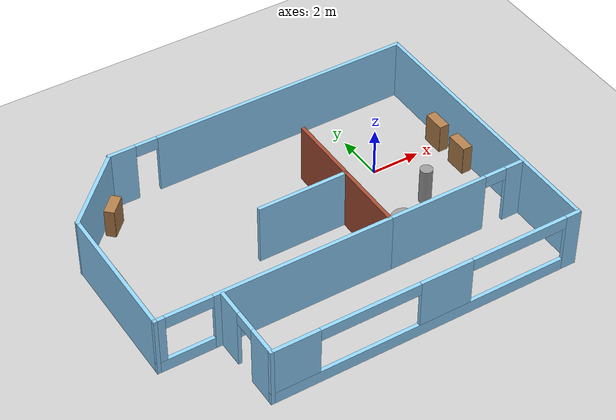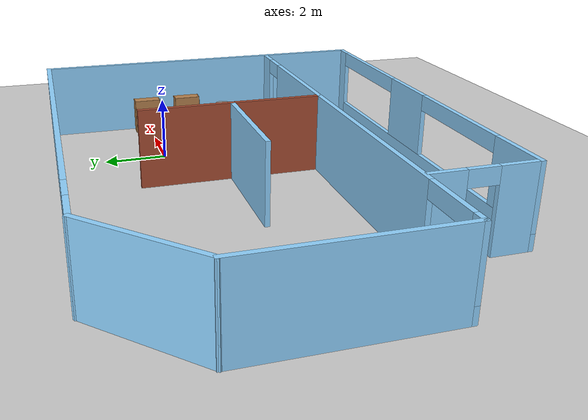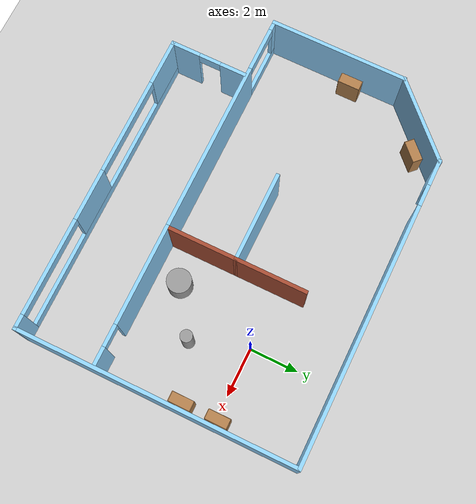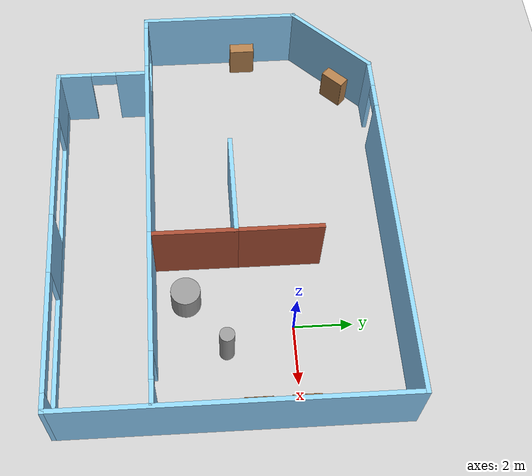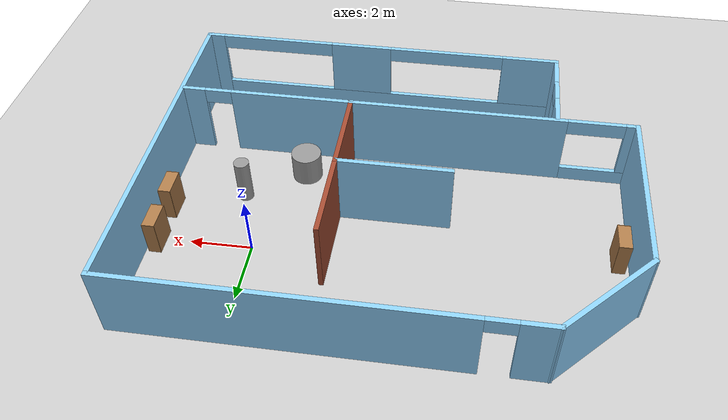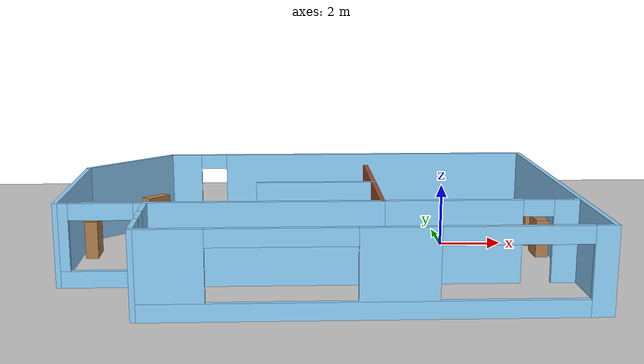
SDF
<sdf version="1.6">
 <world name="default">
  <plugin name="welcome" filename="libwelcome.so"/>
  <light name="sun" type="directional">
   <pose>0 0 10 0 -0 0</pose>
   <diffuse>0.8 0.8 0.8 1</diffuse>
   <specular>0.2 0.2 0.2 1</specular>
   <attenuation>
    <range>1000</range>
    <constant>0.9</constant>
    <linear>0.01</linear>
    <quadratic>0.001</quadratic>
   </attenuation>
   <direction>-0.5 0.1 -0.9</direction>
  </light>
  <model name="ground_plane">
   <static>1</static>
   <link name="link">
    <collision name="collision">
     <geometry><plane><normal>0 0 1</normal><size>100 100</size></plane></geometry>
     <surface>
      <contact><collide_bitmask>65535</collide_bitmask></contact>
      <friction><ode><mu>100</mu><mu2>50</mu2></ode></friction>
     </surface>
    </collision>
    <visual name="visual">
     <cast_shadows>0</cast_shadows>
     <geometry><plane><normal>0 0 1</normal><size>100 100</size></plane></geometry>
     <material>
      <script><uri>file://media/materials/scripts/gazebo.material</uri><name>Gazebo/Grey</name></script>
     </material>
    </visual>
   </link>
  </model>
  <gravity>0 0 -9.8</gravity>
  <magnetic_field>6e-06 2.3e-05 -4.2e-05</magnetic_field>
  <atmosphere type="adiabatic"/>
  <physics name="default_physics" default="0" type="ode">
   <max_step_size>0.001</max_step_size>
   <real_time_factor>1</real_time_factor>
   <real_time_update_rate>1000</real_time_update_rate>
  </physics>
  <scene><ambient>0.4 0.4 0.4 1</ambient><background>0.7 0.7 0.7 1</background><shadows>1</shadows></scene>
  <spherical_coordinates>
   <surface_model>EARTH_WGS84</surface_model>
   <latitude_deg>0</latitude_deg>
   <longitude_deg>0</longitude_deg>
   <elevation>0</elevation>
   <heading_deg>0</heading_deg>
  </spherical_coordinates>
  <model name="building2">
   <pose>-4.24274 -2.14388 0 0 -0 0</pose>
   <link name="Wall_0">
    <collision name="Wall_0_Collision">
     <geometry><box><size>3 0.15 2.5</size></box></geometry>
     <pose>0 0 1.25 0 -0 0</pose>
    </collision>
    <visual name="Wall_0_Visual">
     <pose>0 0 1.25 0 -0 0</pose>
     <geometry><box><size>3 0.15 2.5</size></box></geometry>
     <material>
      <script><uri>file://media/materials/scripts/gazebo.material</uri><name>Gazebo/Bricks</name></script>
      <ambient>0.564706 0.827451 1 1</ambient>
     </material>
     <meta><layer>0</layer></meta>
    </visual>
    <pose>1.79274 -1.06112 0 0 0 -1.5708</pose>
   </link>
   <link name="Wall_10">
    <pose>4.64274 -2.48612 0 0 -0 0</pose>
    <visual name="Wall_10_Visual_0">
     <pose>-0.845309 0 1.25 0 -0 0</pose>
     <geometry><box><size>4.15938 0.15 2.5</size></box></geometry>
     <material>
      <script><uri>file://media/materials/scripts/gazebo.material</uri><name>Gazebo/Grey</name></script>
      <ambient>0.564706 0.827451 1 1</ambient>
     </material>
     <meta><layer>0</layer></meta>
    </visual>
    <collision name="Wall_10_Collision_0">
     <geometry><box><size>4.15938 0.15 2.5</size></box></geometry>
     <pose>-0.845309 0 1.25 0 -0 0</pose>
    </collision>
    <visual name="Wall_10_Visual_1">
     <pose>2.52969 0 1.25 0 -0 0</pose>
     <geometry><box><size>0.790618 0.15 2.5</size></box></geometry>
     <material>
      <script><uri>file://media/materials/scripts/gazebo.material</uri><name>Gazebo/Grey</name></script>
      <ambient>0.564706 0.827451 1 1</ambient>
     </material>
     <meta><layer>0</layer></meta>
    </visual>
    <collision name="Wall_10_Collision_1">
     <geometry><box><size>0.790618 0.15 2.5</size></box></geometry>
     <pose>2.52969 0 1.25 0 -0 0</pose>
    </collision>
    <visual name="Wall_10_Visual_2">
     <pose>1.68438 0 2.25 0 -0 0</pose>
     <geometry><box><size>0.9 0.15 0.5</size></box></geometry>
     <material>
      <script><uri>file://media/materials/scripts/gazebo.material</uri><name>Gazebo/Grey</name></script>
      <ambient>0.564706 0.827451 1 1</ambient>
     </material>
     <meta><layer>0</layer></meta>
    </visual>
    <collision name="Wall_10_Collision_2">
     <geometry><box><size>0.9 0.15 0.5</size></box></geometry>
     <pose>1.68438 0 2.25 0 -0 0</pose>
    </collision>
   </link>
   <link name="Wall_12">
    <collision name="Wall_12_Collision">
     <geometry><box><size>3.75 0.15 2.5</size></box></geometry>
     <pose>0 0 1.25 0 -0 0</pose>
    </collision>
    <visual name="Wall_12_Visual">
     <pose>0 0 1.25 0 -0 0</pose>
     <geometry><box><size>3.75 0.15 2.5</size></box></geometry>
     <material>
      <script><uri>file://media/materials/scripts/gazebo.material</uri><name>Gazebo/Grey</name></script>
      <ambient>0.564706 0.827451 1 1</ambient>
     </material>
     <meta><layer>0</layer></meta>
    </visual>
    <pose>-0.00726 0.363883 0 0 -0 3.14159</pose>
   </link>
   <link name="Wall_14">
    <collision name="Wall_14_Collision">
     <geometry><box><size>3 0.15 2.5</size></box></geometry>
     <pose>0 0 1.25 0 -0 0</pose>
    </collision>
    <visual name="Wall_14_Visual">
     <pose>0 0 1.25 0 -0 0</pose>
     <geometry><box><size>3 0.15 2.5</size></box></geometry>
     <material>
      <script><uri>file://media/materials/scripts/gazebo.material</uri><name>Gazebo/Bricks</name></script>
      <ambient>0.564706 0.827451 1 1</ambient>
     </material>
     <meta><layer>0</layer></meta>
    </visual>
    <pose>1.79274 1.78888 0 0 -0 1.5708</pose>
   </link>
   <link name="Wall_2">
    <pose>-2.88226 -2.48612 0 0 -0 3.14159</pose>
    <visual name="Wall_2_Visual_0">
     <pose>-1.14413 0 1.25 0 -0 0</pose>
     <geometry><box><size>7.21174 0.15 2.5</size></box></geometry>
     <material>
      <script><uri>file://media/materials/scripts/gazebo.material</uri><name>Gazebo/Grey</name></script>
      <ambient>0.564706 0.827451 1 1</ambient>
     </material>
     <meta><layer>0</layer></meta>
    </visual>
    <collision name="Wall_2_Collision_0">
     <geometry><box><size>7.21174 0.15 2.5</size></box></geometry>
     <pose>-1.14413 0 1.25 0 -0 0</pose>
    </collision>
    <visual name="Wall_2_Visual_1">
     <pose>3.60587 0 0.25 0 -0 0</pose>
     <geometry><box><size>2.28826 0.15 0.5</size></box></geometry>
     <material>
      <script><uri>file://media/materials/scripts/gazebo.material</uri><name>Gazebo/Grey</name></script>
      <ambient>0.564706 0.827451 1 1</ambient>
     </material>
     <meta><layer>0</layer></meta>
    </visual>
    <collision name="Wall_2_Collision_1">
     <geometry><box><size>2.28826 0.15 0.5</size></box></geometry>
     <pose>3.60587 0 0.25 0 -0 0</pose>
    </collision>
    <visual name="Wall_2_Visual_2">
     <pose>4.53037 0 1.5 0 -0 0</pose>
     <geometry><box><size>0.439256 0.15 2</size></box></geometry>
     <material>
      <script><uri>file://media/materials/scripts/gazebo.material</uri><name>Gazebo/Grey</name></script>
      <ambient>0.564706 0.827451 1 1</ambient>
     </material>
     <meta><layer>0</layer></meta>
    </visual>
    <collision name="Wall_2_Collision_2">
     <geometry><box><size>0.439256 0.15 2</size></box></geometry>
     <pose>4.53037 0 1.5 0 -0 0</pose>
    </collision>
    <visual name="Wall_2_Visual_3">
     <pose>3.38624 0 2.25 0 -0 0</pose>
     <geometry><box><size>1.849 0.15 0.5</size></box></geometry>
     <material>
      <script><uri>file://media/materials/scripts/gazebo.material</uri><name>Gazebo/Grey</name></script>
      <ambient>0.564706 0.827451 1 1</ambient>
     </material>
     <meta><layer>0</layer></meta>
    </visual>
    <collision name="Wall_2_Collision_3">
     <geometry><box><size>1.849 0.15 0.5</size></box></geometry>
     <pose>3.38624 0 2.25 0 -0 0</pose>
    </collision>
   </link>
   <link name="Wall_3">
    <collision name="Wall_3_Collision">
     <geometry><box><size>5.75 0.15 2.5</size></box></geometry>
     <pose>0 0 1.25 0 -0 0</pose>
    </collision>
    <visual name="Wall_3_Visual">
     <pose>0 0 1.25 0 -0 0</pose>
     <geometry><box><size>5.75 0.15 2.5</size></box></geometry>
     <material>
      <script><uri>file://media/materials/scripts/gazebo.material</uri><name>Gazebo/Grey</name></script>
      <ambient>0.564706 0.827451 1 1</ambient>
     </material>
     <meta><layer>0</layer></meta>
    </visual>
    <pose>-7.55726 0.313883 0 0 -0 1.5708</pose>
   </link>
   <link name="Wall_4">
    <collision name="Wall_4_Collision">
     <geometry><box><size>3.75 0.15 2.5</size></box></geometry>
     <pose>0 0 1.25 0 -0 0</pose>
    </collision>
    <visual name="Wall_4_Visual">
     <pose>0 0 1.25 0 -0 0</pose>
     <geometry><box><size>3.75 0.15 2.5</size></box></geometry>
     <material>
      <script><uri>file://media/materials/scripts/gazebo.material</uri><name>Gazebo/Grey</name></script>
      <ambient>0.564706 0.827451 1 1</ambient>
     </material>
     <meta><layer>0</layer></meta>
    </visual>
    <pose>-6.28447 4.38668 0 0 -0 0.785398</pose>
   </link>
   <link name="Wall_5">
    <pose>1.28832 5.65947 0 0 -0 0</pose>
    <visual name="Wall_5_Visual_0">
     <pose>-5.80886 0 1.25 0 -0 0</pose>
     <geometry><box><size>1.13228 0.15 2.5</size></box></geometry>
     <material>
      <script><uri>file://media/materials/scripts/gazebo.material</uri><name>Gazebo/Grey</name></script>
      <ambient>0.564706 0.827451 1 1</ambient>
     </material>
     <meta><layer>0</layer></meta>
    </visual>
    <collision name="Wall_5_Collision_0">
     <geometry><box><size>1.13228 0.15 2.5</size></box></geometry>
     <pose>-5.80886 0 1.25 0 -0 0</pose>
    </collision>
    <visual name="Wall_5_Visual_1">
     <pose>1.01614 0 1.25 0 -0 0</pose>
     <geometry><box><size>10.7177 0.15 2.5</size></box></geometry>
     <material>
      <script><uri>file://media/materials/scripts/gazebo.material</uri><name>Gazebo/Grey</name></script>
      <ambient>0.564706 0.827451 1 1</ambient>
     </material>
     <meta><layer>0</layer></meta>
    </visual>
    <collision name="Wall_5_Collision_1">
     <geometry><box><size>10.7177 0.15 2.5</size></box></geometry>
     <pose>1.01614 0 1.25 0 -0 0</pose>
    </collision>
    <visual name="Wall_5_Visual_2">
     <pose>-4.79272 0 2.25 0 -0 0</pose>
     <geometry><box><size>0.9 0.15 0.5</size></box></geometry>
     <material>
      <script><uri>file://media/materials/scripts/gazebo.material</uri><name>Gazebo/Grey</name></script>
      <ambient>0.564706 0.827451 1 1</ambient>
     </material>
     <meta><layer>0</layer></meta>
    </visual>
    <collision name="Wall_5_Collision_2">
     <geometry><box><size>0.9 0.15 0.5</size></box></geometry>
     <pose>-4.79272 0 2.25 0 -0 0</pose>
    </collision>
   </link>
   <link name="Wall_6">
    <collision name="Wall_6_Collision">
     <geometry><box><size>11.5 0.15 2.5</size></box></geometry>
     <pose>0 0 1.25 0 -0 0</pose>
    </collision>
    <visual name="Wall_6_Visual">
     <pose>0 0 1.25 0 -0 0</pose>
     <geometry><box><size>11.5 0.15 2.5</size></box></geometry>
     <material>
      <script><uri>file://media/materials/scripts/gazebo.material</uri><name>Gazebo/Grey</name></script>
      <ambient>0.564706 0.827451 1 1</ambient>
     </material>
     <meta><layer>0</layer></meta>
    </visual>
    <pose>7.58832 -0.015533 0 0 0 -1.5708</pose>
   </link>
   <link name="Wall_7">
    <pose>1.28832 -5.69053 0 0 -0 3.14159</pose>
    <visual name="Wall_7_Visual_0">
     <pose>-6.05469 0 1.25 0 -0 0</pose>
     <geometry><box><size>0.640616 0.15 2.5</size></box></geometry>
     <material>
      <script><uri>file://media/materials/scripts/gazebo.material</uri><name>Gazebo/Grey</name></script>
      <ambient>0.564706 0.827451 1 1</ambient>
     </material>
     <meta><layer>0</layer></meta>
    </visual>
    <collision name="Wall_7_Collision_0">
     <geometry><box><size>0.640616 0.15 2.5</size></box></geometry>
     <pose>-6.05469 0 1.25 0 -0 0</pose>
    </collision>
    <visual name="Wall_7_Visual_1">
     <pose>0.320308 0 0.25 0 -0 0</pose>
     <geometry><box><size>12.1094 0.15 0.5</size></box></geometry>
     <material>
      <script><uri>file://media/materials/scripts/gazebo.material</uri><name>Gazebo/Grey</name></script>
      <ambient>0.564706 0.827451 1 1</ambient>
     </material>
     <meta><layer>0</layer></meta>
    </visual>
    <collision name="Wall_7_Collision_1">
     <geometry><box><size>12.1094 0.15 0.5</size></box></geometry>
     <pose>0.320308 0 0.25 0 -0 0</pose>
    </collision>
    <visual name="Wall_7_Visual_2">
     <pose>-0.658941 0 1.5 0 -0 0</pose>
     <geometry><box><size>2.15089 0.15 2</size></box></geometry>
     <material>
      <script><uri>file://media/materials/scripts/gazebo.material</uri><name>Gazebo/Grey</name></script>
      <ambient>0.564706 0.827451 1 1</ambient>
     </material>
     <meta><layer>0</layer></meta>
    </visual>
    <collision name="Wall_7_Collision_2">
     <geometry><box><size>2.15089 0.15 2</size></box></geometry>
     <pose>-0.658941 0 1.5 0 -0 0</pose>
    </collision>
    <visual name="Wall_7_Visual_3">
     <pose>5.39575 0 1.5 0 -0 0</pose>
     <geometry><box><size>1.9585 0.15 2</size></box></geometry>
     <material>
      <script><uri>file://media/materials/scripts/gazebo.material</uri><name>Gazebo/Grey</name></script>
      <ambient>0.564706 0.827451 1 1</ambient>
     </material>
     <meta><layer>0</layer></meta>
    </visual>
    <collision name="Wall_7_Collision_3">
     <geometry><box><size>1.9585 0.15 2</size></box></geometry>
     <pose>5.39575 0 1.5 0 -0 0</pose>
    </collision>
    <visual name="Wall_7_Visual_4">
     <pose>-3.73438 0 2.25 0 -0 0</pose>
     <geometry><box><size>4 0.15 0.5</size></box></geometry>
     <material>
      <script><uri>file://media/materials/scripts/gazebo.material</uri><name>Gazebo/Grey</name></script>
      <ambient>0.564706 0.827451 1 1</ambient>
     </material>
     <meta><layer>0</layer></meta>
    </visual>
    <collision name="Wall_7_Collision_4">
     <geometry><box><size>4 0.15 0.5</size></box></geometry>
     <pose>-3.73438 0 2.25 0 -0 0</pose>
    </collision>
    <visual name="Wall_7_Visual_5">
     <pose>2.4165 0 2.25 0 -0 0</pose>
     <geometry><box><size>4 0.15 0.5</size></box></geometry>
     <material>
      <script><uri>file://media/materials/scripts/gazebo.material</uri><name>Gazebo/Grey</name></script>
      <ambient>0.564706 0.827451 1 1</ambient>
     </material>
     <meta><layer>0</layer></meta>
    </visual>
    <collision name="Wall_7_Collision_5">
     <geometry><box><size>4 0.15 0.5</size></box></geometry>
     <pose>2.4165 0 2.25 0 -0 0</pose>
    </collision>
   </link>
   <link name="Wall_8">
    <pose>-5.01168 -4.14053 0 0 -0 1.5708</pose>
    <visual name="Wall_8_Visual_0">
     <pose>-0.999648 0 1.25 0 -0 0</pose>
     <geometry><box><size>1.2507 0.15 2.5</size></box></geometry>
     <material>
      <script><uri>file://media/materials/scripts/gazebo.material</uri><name>Gazebo/Grey</name></script>
      <ambient>0.564706 0.827451 1 1</ambient>
     </material>
     <meta><layer>0</layer></meta>
    </visual>
    <collision name="Wall_8_Collision_0">
     <geometry><box><size>1.2507 0.15 2.5</size></box></geometry>
     <pose>-0.999648 0 1.25 0 -0 0</pose>
    </collision>
    <visual name="Wall_8_Visual_1">
     <pose>1.07535 0 1.25 0 -0 0</pose>
     <geometry><box><size>1.0993 0.15 2.5</size></box></geometry>
     <material>
      <script><uri>file://media/materials/scripts/gazebo.material</uri><name>Gazebo/Grey</name></script>
      <ambient>0.564706 0.827451 1 1</ambient>
     </material>
     <meta><layer>0</layer></meta>
    </visual>
    <collision name="Wall_8_Collision_1">
     <geometry><box><size>1.0993 0.15 2.5</size></box></geometry>
     <pose>1.07535 0 1.25 0 -0 0</pose>
    </collision>
    <visual name="Wall_8_Visual_2">
     <pose>0.075703 0 2.25 0 -0 0</pose>
     <geometry><box><size>0.9 0.15 0.5</size></box></geometry>
     <material>
      <script><uri>file://media/materials/scripts/gazebo.material</uri><name>Gazebo/Grey</name></script>
      <ambient>0.564706 0.827451 1 1</ambient>
     </material>
     <meta><layer>0</layer></meta>
    </visual>
    <collision name="Wall_8_Collision_2">
     <geometry><box><size>0.9 0.15 0.5</size></box></geometry>
     <pose>0.075703 0 2.25 0 -0 0</pose>
    </collision>
   </link>
   <static>1</static>
  </model>
  <model name="bookshelf">
   <static>1</static>
   <link name="link">
    <inertial><mass>1</mass></inertial>
    <collision name="back">
     <pose>0 0.005 0.6 0 -0 0</pose>
     <geometry><box><size>0.9 0.01 1.2</size></box></geometry>
    </collision>
    <visual name="visual1">
     <pose>0 0.005 0.6 0 -0 0</pose>
     <geometry><box><size>0.9 0.01 1.2</size></box></geometry>
     <material>
      <script><uri>file://media/materials/scripts/gazebo.material</uri><name>Gazebo/Wood</name></script>
     </material>
    </visual>
    <collision name="left_side">
     <pose>0.45 -0.195 0.6 0 -0 0</pose>
     <geometry><box><size>0.02 0.4 1.2</size></box></geometry>
    </collision>
    <visual name="visual2">
     <pose>0.45 -0.195 0.6 0 -0 0</pose>
     <geometry><box><size>0.02 0.4 1.2</size></box></geometry>
     <material>
      <script><uri>file://media/materials/scripts/gazebo.material</uri><name>Gazebo/Wood</name></script>
     </material>
    </visual>
    <collision name="right_side">
     <pose>-0.45 -0.195 0.6 0 -0 0</pose>
     <geometry><box><size>0.02 0.4 1.2</size></box></geometry>
    </collision>
    <visual name="visual3">
     <pose>-0.45 -0.195 0.6 0 -0 0</pose>
     <geometry><box><size>0.02 0.4 1.2</size></box></geometry>
     <material>
      <script><uri>file://media/materials/scripts/gazebo.material</uri><name>Gazebo/Wood</name></script>
     </material>
    </visual>
    <collision name="bottom">
     <pose>0 -0.195 0.03 0 -0 0</pose>
     <geometry><box><size>0.88 0.4 0.06</size></box></geometry>
    </collision>
    <visual name="visual4">
     <pose>0 -0.195 0.03 0 -0 0</pose>
     <geometry><box><size>0.88 0.4 0.06</size></box></geometry>
     <material>
      <script><uri>file://media/materials/scripts/gazebo.material</uri><name>Gazebo/Wood</name></script>
     </material>
    </visual>
    <collision name="top">
     <pose>0 -0.195 1.19 0 -0 0</pose>
     <geometry><box><size>0.88 0.4 0.02</size></box></geometry>
    </collision>
    <visual name="visual5">
     <pose>0 -0.195 1.19 0 -0 0</pose>
     <geometry><box><size>0.88 0.4 0.02</size></box></geometry>
     <material>
      <script><uri>file://media/materials/scripts/gazebo.material</uri><name>Gazebo/Wood</name></script>
     </material>
    </visual>
    <collision name="low_shelf">
     <pose>0 -0.195 0.43 0 -0 0</pose>
     <geometry><box><size>0.88 0.4 0.02</size></box></geometry>
    </collision>
    <visual name="visual6">
     <pose>0 -0.195 0.43 0 -0 0</pose>
     <geometry><box><size>0.88 0.4 0.02</size></box></geometry>
     <material>
      <script><uri>file://media/materials/scripts/gazebo.material</uri><name>Gazebo/Wood</name></script>
     </material>
    </visual>
    <collision name="high_shelf">
     <pose>0 -0.195 0.8 0 -0 0</pose>
     <geometry><box><size>0.88 0.4 0.02</size></box></geometry>
    </collision>
    <visual name="visual7">
     <pose>0 -0.195 0.8 0 -0 0</pose>
     <geometry><box><size>0.88 0.4 0.02</size></box></geometry>
     <material>
      <script><uri>file://media/materials/scripts/gazebo.material</uri><name>Gazebo/Wood</name></script>
     </material>
    </visual>
   </link>
   <pose>2.78782 -1.3932 0 0 -0 1.57079</pose>
  </model>
  <model name="bookshelf_clone">
   <static>1</static>
   <link name="link">
    <inertial><mass>1</mass></inertial>
    <collision name="back">
     <pose>0 0.005 0.6 0 -0 0</pose>
     <geometry><box><size>0.9 0.01 1.2</size></box></geometry>
    </collision>
    <visual name="visual1">
     <pose>0 0.005 0.6 0 -0 0</pose>
     <geometry><box><size>0.9 0.01 1.2</size></box></geometry>
     <material>
      <script><uri>file://media/materials/scripts/gazebo.material</uri><name>Gazebo/Wood</name></script>
     </material>
    </visual>
    <collision name="left_side">
     <pose>0.45 -0.195 0.6 0 -0 0</pose>
     <geometry><box><size>0.02 0.4 1.2</size></box></geometry>
    </collision>
    <visual name="visual2">
     <pose>0.45 -0.195 0.6 0 -0 0</pose>
     <geometry><box><size>0.02 0.4 1.2</size></box></geometry>
     <material>
      <script><uri>file://media/materials/scripts/gazebo.material</uri><name>Gazebo/Wood</name></script>
     </material>
    </visual>
    <collision name="right_side">
     <pose>-0.45 -0.195 0.6 0 -0 0</pose>
     <geometry><box><size>0.02 0.4 1.2</size></box></geometry>
    </collision>
    <visual name="visual3">
     <pose>-0.45 -0.195 0.6 0 -0 0</pose>
     <geometry><box><size>0.02 0.4 1.2</size></box></geometry>
     <material>
      <script><uri>file://media/materials/scripts/gazebo.material</uri><name>Gazebo/Wood</name></script>
     </material>
    </visual>
    <collision name="bottom">
     <pose>0 -0.195 0.03 0 -0 0</pose>
     <geometry><box><size>0.88 0.4 0.06</size></box></geometry>
    </collision>
    <visual name="visual4">
     <pose>0 -0.195 0.03 0 -0 0</pose>
     <geometry><box><size>0.88 0.4 0.06</size></box></geometry>
     <material>
      <script><uri>file://media/materials/scripts/gazebo.material</uri><name>Gazebo/Wood</name></script>
     </material>
    </visual>
    <collision name="top">
     <pose>0 -0.195 1.19 0 -0 0</pose>
     <geometry><box><size>0.88 0.4 0.02</size></box></geometry>
    </collision>
    <visual name="visual5">
     <pose>0 -0.195 1.19 0 -0 0</pose>
     <geometry><box><size>0.88 0.4 0.02</size></box></geometry>
     <material>
      <script><uri>file://media/materials/scripts/gazebo.material</uri><name>Gazebo/Wood</name></script>
     </material>
    </visual>
    <collision name="low_shelf">
     <pose>0 -0.195 0.43 0 -0 0</pose>
     <geometry><box><size>0.88 0.4 0.02</size></box></geometry>
    </collision>
    <visual name="visual6">
     <pose>0 -0.195 0.43 0 -0 0</pose>
     <geometry><box><size>0.88 0.4 0.02</size></box></geometry>
     <material>
      <script><uri>file://media/materials/scripts/gazebo.material</uri><name>Gazebo/Wood</name></script>
     </material>
    </visual>
    <collision name="high_shelf">
     <pose>0 -0.195 0.8 0 -0 0</pose>
     <geometry><box><size>0.88 0.4 0.02</size></box></geometry>
    </collision>
    <visual name="visual7">
     <pose>0 -0.195 0.8 0 -0 0</pose>
     <geometry><box><size>0.88 0.4 0.02</size></box></geometry>
     <material>
      <script><uri>file://media/materials/scripts/gazebo.material</uri><name>Gazebo/Wood</name></script>
     </material>
    </visual>
   </link>
   <pose>2.77912 0.106133 0 0 -0 1.57079</pose>
  </model>
  <model name="bookshelf_clone_0">
   <static>1</static>
   <link name="link">
    <inertial><mass>1</mass></inertial>
    <collision name="back">
     <pose>0 0.005 0.6 0 -0 0</pose>
     <geometry><box><size>0.9 0.01 1.2</size></box></geometry>
    </collision>
    <visual name="visual1">
     <pose>0 0.005 0.6 0 -0 0</pose>
     <geometry><box><size>0.9 0.01 1.2</size></box></geometry>
     <material>
      <script><uri>file://media/materials/scripts/gazebo.material</uri><name>Gazebo/Wood</name></script>
     </material>
    </visual>
    <collision name="left_side">
     <pose>0.45 -0.195 0.6 0 -0 0</pose>
     <geometry><box><size>0.02 0.4 1.2</size></box></geometry>
    </collision>
    <visual name="visual2">
     <pose>0.45 -0.195 0.6 0 -0 0</pose>
     <geometry><box><size>0.02 0.4 1.2</size></box></geometry>
     <material>
      <script><uri>file://media/materials/scripts/gazebo.material</uri><name>Gazebo/Wood</name></script>
     </material>
    </visual>
    <collision name="right_side">
     <pose>-0.45 -0.195 0.6 0 -0 0</pose>
     <geometry><box><size>0.02 0.4 1.2</size></box></geometry>
    </collision>
    <visual name="visual3">
     <pose>-0.45 -0.195 0.6 0 -0 0</pose>
     <geometry><box><size>0.02 0.4 1.2</size></box></geometry>
     <material>
      <script><uri>file://media/materials/scripts/gazebo.material</uri><name>Gazebo/Wood</name></script>
     </material>
    </visual>
    <collision name="bottom">
     <pose>0 -0.195 0.03 0 -0 0</pose>
     <geometry><box><size>0.88 0.4 0.06</size></box></geometry>
    </collision>
    <visual name="visual4">
     <pose>0 -0.195 0.03 0 -0 0</pose>
     <geometry><box><size>0.88 0.4 0.06</size></box></geometry>
     <material>
      <script><uri>file://media/materials/scripts/gazebo.material</uri><name>Gazebo/Wood</name></script>
     </material>
    </visual>
    <collision name="top">
     <pose>0 -0.195 1.19 0 -0 0</pose>
     <geometry><box><size>0.88 0.4 0.02</size></box></geometry>
    </collision>
    <visual name="visual5">
     <pose>0 -0.195 1.19 0 -0 0</pose>
     <geometry><box><size>0.88 0.4 0.02</size></box></geometry>
     <material>
      <script><uri>file://media/materials/scripts/gazebo.material</uri><name>Gazebo/Wood</name></script>
     </material>
    </visual>
    <collision name="low_shelf">
     <pose>0 -0.195 0.43 0 -0 0</pose>
     <geometry><box><size>0.88 0.4 0.02</size></box></geometry>
    </collision>
    <visual name="visual6">
     <pose>0 -0.195 0.43 0 -0 0</pose>
     <geometry><box><size>0.88 0.4 0.02</size></box></geometry>
     <material>
      <script><uri>file://media/materials/scripts/gazebo.material</uri><name>Gazebo/Wood</name></script>
     </material>
    </visual>
    <collision name="high_shelf">
     <pose>0 -0.195 0.8 0 -0 0</pose>
     <geometry><box><size>0.88 0.4 0.02</size></box></geometry>
    </collision>
    <visual name="visual7">
     <pose>0 -0.195 0.8 0 -0 0</pose>
     <geometry><box><size>0.88 0.4 0.02</size></box></geometry>
     <material>
      <script><uri>file://media/materials/scripts/gazebo.material</uri><name>Gazebo/Wood</name></script>
     </material>
    </visual>
   </link>
   <pose>-9.62576 2.3262 0 0 0 -2.3562</pose>
  </model>
  <model name="bookshelf_clone_1">
   <static>1</static>
   <link name="link">
    <inertial><mass>1</mass></inertial>
    <collision name="back">
     <pose>0 0.005 0.6 0 -0 0</pose>
     <geometry><box><size>0.9 0.01 1.2</size></box></geometry>
    </collision>
    <visual name="visual1">
     <pose>0 0.005 0.6 0 -0 0</pose>
     <geometry><box><size>0.9 0.01 1.2</size></box></geometry>
     <material>
      <script><uri>file://media/materials/scripts/gazebo.material</uri><name>Gazebo/Wood</name></script>
     </material>
    </visual>
    <collision name="left_side">
     <pose>0.45 -0.195 0.6 0 -0 0</pose>
     <geometry><box><size>0.02 0.4 1.2</size></box></geometry>
    </collision>
    <visual name="visual2">
     <pose>0.45 -0.195 0.6 0 -0 0</pose>
     <geometry><box><size>0.02 0.4 1.2</size></box></geometry>
     <material>
      <script><uri>file://media/materials/scripts/gazebo.material</uri><name>Gazebo/Wood</name></script>
     </material>
    </visual>
    <collision name="right_side">
     <pose>-0.45 -0.195 0.6 0 -0 0</pose>
     <geometry><box><size>0.02 0.4 1.2</size></box></geometry>
    </collision>
    <visual name="visual3">
     <pose>-0.45 -0.195 0.6 0 -0 0</pose>
     <geometry><box><size>0.02 0.4 1.2</size></box></geometry>
     <material>
      <script><uri>file://media/materials/scripts/gazebo.material</uri><name>Gazebo/Wood</name></script>
     </material>
    </visual>
    <collision name="bottom">
     <pose>0 -0.195 0.03 0 -0 0</pose>
     <geometry><box><size>0.88 0.4 0.06</size></box></geometry>
    </collision>
    <visual name="visual4">
     <pose>0 -0.195 0.03 0 -0 0</pose>
     <geometry><box><size>0.88 0.4 0.06</size></box></geometry>
     <material>
      <script><uri>file://media/materials/scripts/gazebo.material</uri><name>Gazebo/Wood</name></script>
     </material>
    </visual>
    <collision name="top">
     <pose>0 -0.195 1.19 0 -0 0</pose>
     <geometry><box><size>0.88 0.4 0.02</size></box></geometry>
    </collision>
    <visual name="visual5">
     <pose>0 -0.195 1.19 0 -0 0</pose>
     <geometry><box><size>0.88 0.4 0.02</size></box></geometry>
     <material>
      <script><uri>file://media/materials/scripts/gazebo.material</uri><name>Gazebo/Wood</name></script>
     </material>
    </visual>
    <collision name="low_shelf">
     <pose>0 -0.195 0.43 0 -0 0</pose>
     <geometry><box><size>0.88 0.4 0.02</size></box></geometry>
    </collision>
    <visual name="visual6">
     <pose>0 -0.195 0.43 0 -0 0</pose>
     <geometry><box><size>0.88 0.4 0.02</size></box></geometry>
     <material>
      <script><uri>file://media/materials/scripts/gazebo.material</uri><name>Gazebo/Wood</name></script>
     </material>
    </visual>
    <collision name="high_shelf">
     <pose>0 -0.195 0.8 0 -0 0</pose>
     <geometry><box><size>0.88 0.4 0.02</size></box></geometry>
    </collision>
    <visual name="visual7">
     <pose>0 -0.195 0.8 0 -0 0</pose>
     <geometry><box><size>0.88 0.4 0.02</size></box></geometry>
     <material>
      <script><uri>file://media/materials/scripts/gazebo.material</uri><name>Gazebo/Wood</name></script>
     </material>
    </visual>
   </link>
   <pose>-11.1997 -1 0 0 0 -1.5708</pose>
  </model>
  <plugin name="collision_map_creator" filename="libcollision_map_creator.so"/>
  <model name="unit_cylinder">
   <pose>-1.06519 -3.54493 0.499993 -3e-06 -4e-06 -0</pose>
   <link name="link">
    <inertial>
     <mass>1</mass>
     <inertia><ixx>0.145833</ixx><ixy>0</ixy><ixz>0</ixz><iyy>0.145833</iyy><iyz>0</iyz><izz>0.125</izz></inertia>
    </inertial>
    <collision name="collision">
     <geometry><cylinder><radius>0.5</radius><length>1</length></cylinder></geometry>
    </collision>
    <visual name="visual">
     <geometry><cylinder><radius>0.5</radius><length>1</length></cylinder></geometry>
     <material>
      <script><name>Gazebo/Grey</name><uri>file://media/materials/scripts/gazebo.material</uri></script>
     </material>
    </visual>
   </link>
  </model>
  <model name="unit_cylinder_2">
   <link name="link">
    <inertial>
     <mass>1</mass>
     <inertia><ixx>0.145833</ixx><ixy>0</ixy><ixz>0</ixz><iyy>0.145833</iyy><iyz>0</iyz><izz>0.125</izz></inertia>
    </inertial>
    <visual name="visual">
     <geometry><cylinder><radius>0.25</radius><length>2</length></cylinder></geometry>
     <material>
      <script><name>Gazebo/Grey</name><uri>file://media/materials/scripts/gazebo.material</uri></script>
      <shader type="pixel"><normal_map>__default__</normal_map></shader>
      <ambient>0.3 0.3 0.3 1</ambient>
      <diffuse>0.7 0.7 0.7 1</diffuse>
      <specular>0.01 0.01 0.01 1</specular>
      <emissive>0 0 0 1</emissive>
     </material>
    </visual>
    <collision name="collision">
     <geometry><cylinder><radius>0.25</radius><length>2</length></cylinder></geometry>
     <surface>
      <friction>
       <ode><mu>1</mu><mu2>1</mu2><fdir1>0 0 0</fdir1><slip1>0</slip1><slip2>0</slip2></ode>
       <torsional>
        <coefficient>1</coefficient>
        <patch_radius>0</patch_radius>
        <surface_radius>0</surface_radius>
        <use_patch_radius>1</use_patch_radius>
        <ode><slip>0</slip></ode>
       </torsional>
      </friction>
      <bounce><restitution_coefficient>0</restitution_coefficient><threshold>1e+06</threshold></bounce>
      <contact>
       <collide_without_contact>0</collide_without_contact>
       <collide_without_contact_bitmask>1</collide_without_contact_bitmask>
       <collide_bitmask>1</collide_bitmask>
       <ode>
        <soft_cfm>0</soft_cfm>
        <soft_erp>0.2</soft_erp>
        <kp>1e+13</kp>
        <kd>1</kd>
        <max_vel>0.01</max_vel>
        <min_depth>0</min_depth>
       </ode>
       <bullet>
        <split_impulse>1</split_impulse>
        <split_impulse_penetration_threshold>-0.01</split_impulse_penetration_threshold>
        <soft_cfm>0</soft_cfm>
        <soft_erp>0.2</soft_erp>
        <kp>1e+13</kp>
        <kd>1</kd>
       </bullet>
      </contact>
     </surface>
    </collision>
   </link>
   <static>0</static>
   <pose>0.780718 -2.26614 0.5 0 -0 0</pose>
  </model>
 </world>
</sdf>
